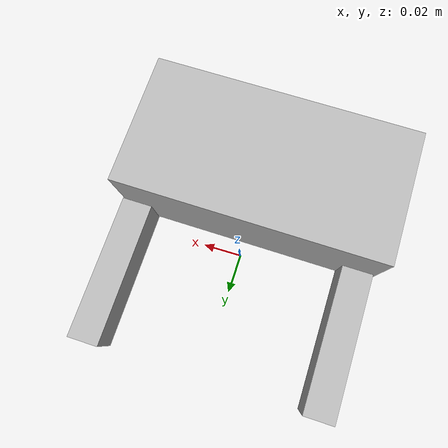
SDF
<?xml version="1.0"?>
<!-- This sdf file is based on schunk_wsg_50.sdf -->
<sdf version="1.7">
  <model name="Schunk_Gripper">
    <link name="body">
      <pose>0 -0.049133 0 0 0 0</pose>
      <inertial>
        <mass>0.988882</mass>
        <inertia>
          <ixx>0.162992</ixx>
          <ixy>0</ixy>
          <ixz>0</ixz>
          <iyy>0.162992</iyy>
          <iyz>0</iyz>
          <izz>0.164814</izz>
        </inertia>
      </inertial>
      <visual name="visual">
        <geometry>
          <box>
            <size>0.146 0.0725 0.049521</size>
          </box>
        </geometry>
        <material>
          <ambient>0.3 0.3 0.3 1</ambient>
          <diffuse>0.7 0.7 0.7 1</diffuse>
          <specular>0.01 0.01 0.01 1</specular>
          <emissive>0 0 0 1</emissive>
        </material>
      </visual>
      <collision name="collision">
        <geometry>
          <box>
            <size>0.146 0.15 0.05</size>
          </box>
        </geometry>
      </collision>
    </link>
    <frame name="body_frame">
      <pose relative_to="body"/>
    </frame>
    <link name="left_finger">
      <pose>-0.06 0.028 0 0 3.141592 0</pose>
      <inertial>
        <mass>0.05</mass>
        <inertia>
          <ixx>0.16</ixx>
          <ixy>0</ixy>
          <ixz>0</ixz>
          <iyy>0.16</iyy>
          <iyz>0</iyz>
          <izz>0.16</izz>
        </inertia>
      </inertial>
      <visual name="visual">
        <geometry>
          <box>
            <size>0.016 0.075 0.02</size>
          </box>
        </geometry>
        <material>
          <ambient>0.3 0.3 0.3 1</ambient>
          <diffuse>0.7 0.7 0.7 1</diffuse>
          <specular>0.01 0.01 0.01 1</specular>
          <emissive>0 0 0 1</emissive>
        </material>
      </visual>
    </link>
    <link name="right_finger">
      <pose>0.06 0.028 0 0 0 0</pose>
      <inertial>
        <mass>0.05</mass>
        <inertia>
          <ixx>0.16</ixx>
          <ixy>0</ixy>
          <ixz>0</ixz>
          <iyy>0.16</iyy>
          <iyz>0</iyz>
          <izz>0.16</izz>
        </inertia>
      </inertial>
      <visual name="visual">
        <geometry>
          <box>
            <size>0.016 0.075 0.02</size>
          </box>
        </geometry>
        <material>
          <ambient>0.3 0.3 0.3 1</ambient>
          <diffuse>0.7 0.7 0.7 1</diffuse>
          <specular>0.01 0.01 0.01 1</specular>
          <emissive>0 0 0 1</emissive>
        </material>
      </visual>
    </link>
    <joint name="left_finger_sliding_joint" type="fixed">
      <parent>body</parent>
      <child>left_finger</child>
    </joint>
    <joint name="right_finger_sliding_joint" type="fixed">
      <parent>body</parent>
      <child>right_finger</child>
    </joint>
  </model>
</sdf>
